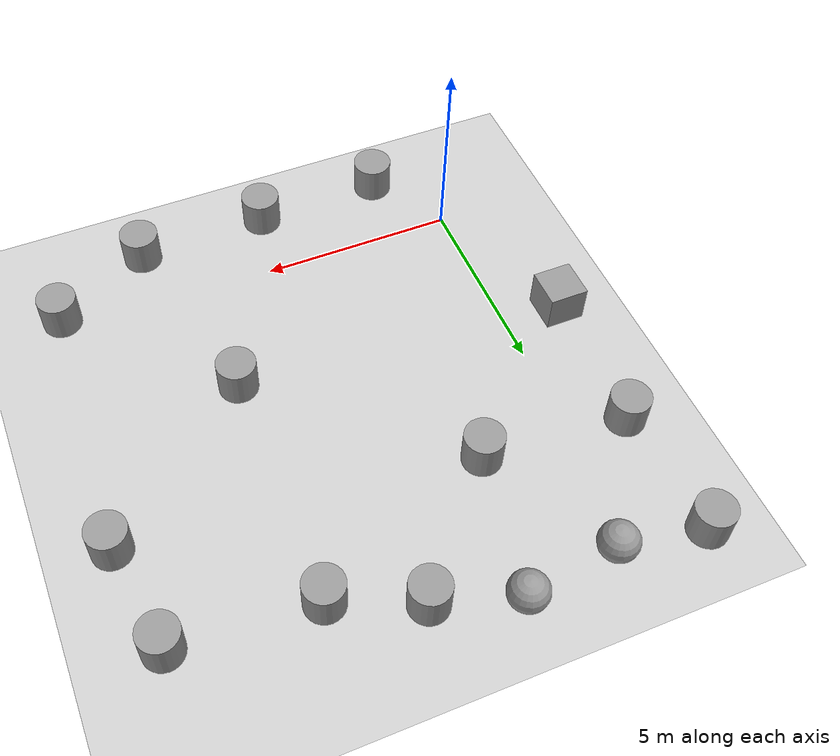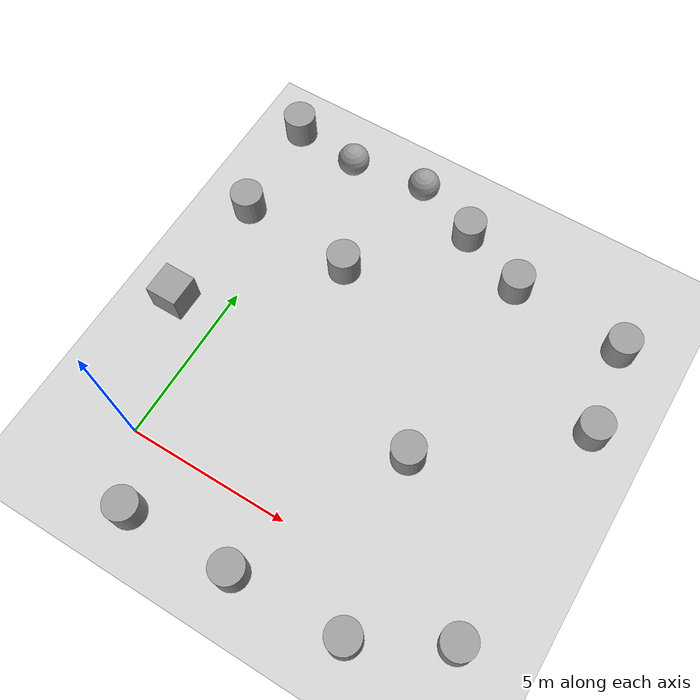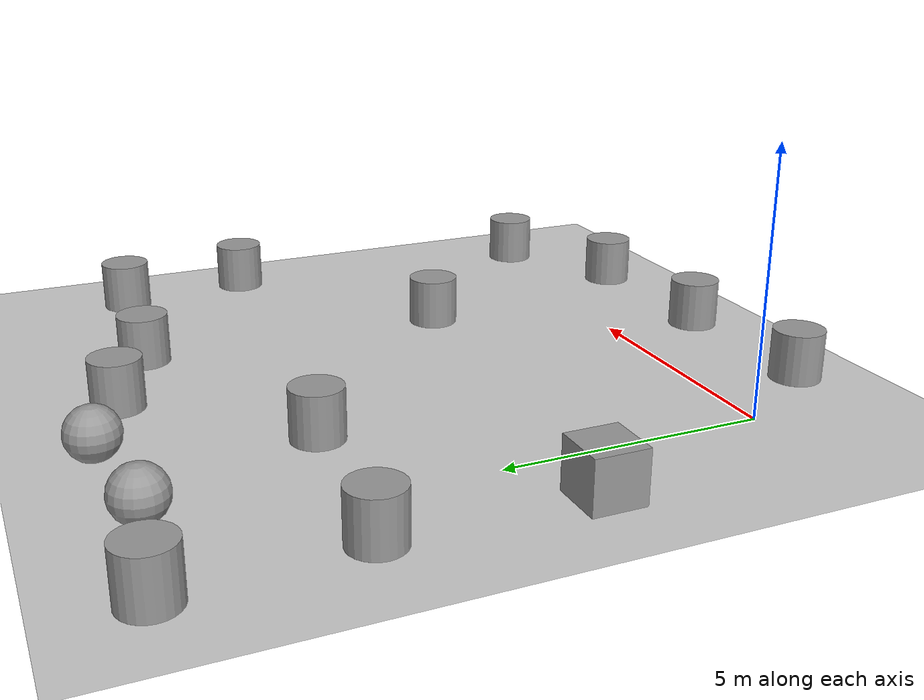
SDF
<sdf version="1.6">
 <world name="default">
  <light name="sun" type="directional">
   <pose>0 0 10 0 -0 0</pose>
   <diffuse>0.8 0.8 0.8 1</diffuse>
   <specular>0.1 0.1 0.1 1</specular>
   <attenuation>
    <range>1000</range>
    <constant>0.9</constant>
    <linear>0.01</linear>
    <quadratic>0.001</quadratic>
   </attenuation>
   <direction>-0.5 0.5 -1</direction>
  </light>
  <model name="ground_plane">
   <static>1</static>
   <link name="link">
    <collision name="collision">
     <geometry><plane><normal>0 0 1</normal><size>100 100</size></plane></geometry>
     <surface><friction><ode><mu>100</mu><mu2>50</mu2></ode></friction></surface>
    </collision>
    <visual name="visual">
     <cast_shadows>0</cast_shadows>
     <geometry><plane><normal>0 0 1</normal><size>100 100</size></plane></geometry>
     <material>
      <script><uri>file://media/materials/scripts/gazebo.material</uri><name>Gazebo/Grey</name></script>
     </material>
    </visual>
   </link>
  </model>
  <gravity>0 0 -9.8</gravity>
  <magnetic_field>6e-06 2.3e-05 -4.2e-05</magnetic_field>
  <atmosphere type="adiabatic"/>
  <physics name="default_physics" default="0" type="ode">
   <max_step_size>0.001</max_step_size>
   <real_time_factor>1</real_time_factor>
   <real_time_update_rate>1000</real_time_update_rate>
  </physics>
  <scene><ambient>0.4 0.4 0.4 1</ambient><background>0.7 0.7 0.7 1</background><shadows>1</shadows></scene>
  <spherical_coordinates>
   <surface_model>EARTH_WGS84</surface_model>
   <latitude_deg>0</latitude_deg>
   <longitude_deg>0</longitude_deg>
   <elevation>0</elevation>
   <heading_deg>0</heading_deg>
  </spherical_coordinates>
  <model name="unit_box_0">
   <pose>-1.47151 3.96905 0.499995 0 1e-05 0</pose>
   <link name="link">
    <inertial>
     <mass>1</mass>
     <inertia>
      <ixx>0.166667</ixx>
      <ixy>0</ixy>
      <ixz>0</ixz>
      <iyy>0.166667</iyy>
      <iyz>0</iyz>
      <izz>0.166667</izz>
     </inertia>
    </inertial>
    <collision name="collision"><geometry><box><size>1 1 1</size></box></geometry></collision>
    <visual name="visual">
     <geometry><box><size>1 1 1</size></box></geometry>
     <material>
      <script><name>Gazebo/Grey</name><uri>file://media/materials/scripts/gazebo.material</uri></script>
     </material>
    </visual>
   </link>
  </model>
  <model name="unit_cylinder_0">
   <pose>-1.37716 7.70584 0.499998 3e-06 -3e-06 0</pose>
   <link name="link">
    <inertial>
     <mass>1</mass>
     <inertia><ixx>0.145833</ixx><ixy>0</ixy><ixz>0</ixz><iyy>0.145833</iyy><iyz>0</iyz><izz>0.125</izz></inertia>
    </inertial>
    <collision name="collision">
     <geometry><cylinder><radius>0.5</radius><length>1</length></cylinder></geometry>
    </collision>
    <visual name="visual">
     <geometry><cylinder><radius>0.5</radius><length>1</length></cylinder></geometry>
     <material>
      <script><name>Gazebo/Grey</name><uri>file://media/materials/scripts/gazebo.material</uri></script>
     </material>
    </visual>
   </link>
  </model>
  <model name="unit_sphere_0">
   <pose>0.591738 10.733 0.5 0 -0 0</pose>
   <link name="link">
    <inertial>
     <mass>1</mass>
     <inertia><ixx>0.1</ixx><ixy>0</ixy><ixz>0</ixz><iyy>0.1</iyy><iyz>0</iyz><izz>0.1</izz></inertia>
    </inertial>
    <collision name="collision"><geometry><sphere><radius>0.5</radius></sphere></geometry></collision>
    <visual name="visual">
     <geometry><sphere><radius>0.5</radius></sphere></geometry>
     <material>
      <script><name>Gazebo/Grey</name><uri>file://media/materials/scripts/gazebo.material</uri></script>
     </material>
    </visual>
   </link>
  </model>
  <model name="unit_cylinder_1">
   <pose>-1.61204 11.0291 0.499998 3e-06 -3e-06 0</pose>
   <link name="link">
    <inertial>
     <mass>1</mass>
     <inertia><ixx>0.145833</ixx><ixy>0</ixy><ixz>0</ixz><iyy>0.145833</iyy><iyz>0</iyz><izz>0.125</izz></inertia>
    </inertial>
    <collision name="collision">
     <geometry><cylinder><radius>0.5</radius><length>1</length></cylinder></geometry>
    </collision>
    <visual name="visual">
     <geometry><cylinder><radius>0.5</radius><length>1</length></cylinder></geometry>
     <material>
      <script><name>Gazebo/Grey</name><uri>file://media/materials/scripts/gazebo.material</uri></script>
     </material>
    </visual>
   </link>
  </model>
  <model name="unit_sphere_1">
   <pose>2.98051 11.0508 0.5 0 -0 0</pose>
   <link name="link">
    <inertial>
     <mass>1</mass>
     <inertia><ixx>0.1</ixx><ixy>0</ixy><ixz>0</ixz><iyy>0.1</iyy><iyz>0</iyz><izz>0.1</izz></inertia>
    </inertial>
    <collision name="collision"><geometry><sphere><radius>0.5</radius></sphere></geometry></collision>
    <visual name="visual">
     <geometry><sphere><radius>0.5</radius></sphere></geometry>
     <material>
      <script><name>Gazebo/Grey</name><uri>file://media/materials/scripts/gazebo.material</uri></script>
     </material>
    </visual>
   </link>
  </model>
  <model name="unit_cylinder_2">
   <pose>4.98263 10.3314 0.499998 3e-06 -3e-06 0</pose>
   <link name="link">
    <inertial>
     <mass>1</mass>
     <inertia><ixx>0.145833</ixx><ixy>0</ixy><ixz>0</ixz><iyy>0.145833</iyy><iyz>0</iyz><izz>0.125</izz></inertia>
    </inertial>
    <collision name="collision">
     <geometry><cylinder><radius>0.5</radius><length>1</length></cylinder></geometry>
    </collision>
    <visual name="visual">
     <geometry><cylinder><radius>0.5</radius><length>1</length></cylinder></geometry>
     <material>
      <script><name>Gazebo/Grey</name><uri>file://media/materials/scripts/gazebo.material</uri></script>
     </material>
    </visual>
   </link>
  </model>
  <model name="unit_cylinder_3">
   <pose>7.06512 9.45848 0.499992 -3e-06 3e-06 0</pose>
   <link name="link">
    <inertial>
     <mass>1</mass>
     <inertia><ixx>0.145833</ixx><ixy>0</ixy><ixz>0</ixz><iyy>0.145833</iyy><iyz>0</iyz><izz>0.125</izz></inertia>
    </inertial>
    <collision name="collision">
     <geometry><cylinder><radius>0.5</radius><length>1</length></cylinder></geometry>
    </collision>
    <visual name="visual">
     <geometry><cylinder><radius>0.5</radius><length>1</length></cylinder></geometry>
     <material>
      <script><name>Gazebo/Grey</name><uri>file://media/materials/scripts/gazebo.material</uri></script>
     </material>
    </visual>
   </link>
  </model>
  <model name="unit_cylinder_4">
   <pose>10.6105 9.17734 0.499998 3e-06 -4e-06 0</pose>
   <link name="link">
    <inertial>
     <mass>1</mass>
     <inertia><ixx>0.145833</ixx><ixy>0</ixy><ixz>0</ixz><iyy>0.145833</iyy><iyz>0</iyz><izz>0.125</izz></inertia>
    </inertial>
    <collision name="collision">
     <geometry><cylinder><radius>0.5</radius><length>1</length></cylinder></geometry>
    </collision>
    <visual name="visual">
     <geometry><cylinder><radius>0.5</radius><length>1</length></cylinder></geometry>
     <material>
      <script><name>Gazebo/Grey</name><uri>file://media/materials/scripts/gazebo.material</uri></script>
     </material>
    </visual>
   </link>
  </model>
  <model name="unit_cylinder_5">
   <pose>11.0133 6.48297 0.499992 -3e-06 4e-06 0</pose>
   <link name="link">
    <inertial>
     <mass>1</mass>
     <inertia><ixx>0.145833</ixx><ixy>0</ixy><ixz>0</ixz><iyy>0.145833</iyy><iyz>0</iyz><izz>0.125</izz></inertia>
    </inertial>
    <collision name="collision">
     <geometry><cylinder><radius>0.5</radius><length>1</length></cylinder></geometry>
    </collision>
    <visual name="visual">
     <geometry><cylinder><radius>0.5</radius><length>1</length></cylinder></geometry>
     <material>
      <script><name>Gazebo/Grey</name><uri>file://media/materials/scripts/gazebo.material</uri></script>
     </material>
    </visual>
   </link>
  </model>
  <model name="unit_cylinder_6">
   <pose>6.96929 3.25891 0.499998 3e-06 -4e-06 0</pose>
   <link name="link">
    <inertial>
     <mass>1</mass>
     <inertia><ixx>0.145833</ixx><ixy>0</ixy><ixz>0</ixz><iyy>0.145833</iyy><iyz>0</iyz><izz>0.125</izz></inertia>
    </inertial>
    <collision name="collision">
     <geometry><cylinder><radius>0.5</radius><length>1</length></cylinder></geometry>
    </collision>
    <visual name="visual">
     <geometry><cylinder><radius>0.5</radius><length>1</length></cylinder></geometry>
     <material>
      <script><name>Gazebo/Grey</name><uri>file://media/materials/scripts/gazebo.material</uri></script>
     </material>
    </visual>
   </link>
  </model>
  <model name="unit_cylinder_7">
   <pose>1.29067 -1.90805 0.499992 -3e-06 -4e-06 -0</pose>
   <link name="link">
    <inertial>
     <mass>1</mass>
     <inertia><ixx>0.145833</ixx><ixy>0</ixy><ixz>0</ixz><iyy>0.145833</iyy><iyz>0</iyz><izz>0.125</izz></inertia>
    </inertial>
    <collision name="collision">
     <geometry><cylinder><radius>0.5</radius><length>1</length></cylinder></geometry>
    </collision>
    <visual name="visual">
     <geometry><cylinder><radius>0.5</radius><length>1</length></cylinder></geometry>
     <material>
      <script><name>Gazebo/Grey</name><uri>file://media/materials/scripts/gazebo.material</uri></script>
     </material>
    </visual>
   </link>
  </model>
  <model name="unit_cylinder_8">
   <pose>4.6046 -1.82447 0.499993 -3e-06 -3e-06 0</pose>
   <link name="link">
    <inertial>
     <mass>1</mass>
     <inertia><ixx>0.145833</ixx><ixy>0</ixy><ixz>0</ixz><iyy>0.145833</iyy><iyz>0</iyz><izz>0.125</izz></inertia>
    </inertial>
    <collision name="collision">
     <geometry><cylinder><radius>0.5</radius><length>1</length></cylinder></geometry>
    </collision>
    <visual name="visual">
     <geometry><cylinder><radius>0.5</radius><length>1</length></cylinder></geometry>
     <material>
      <script><name>Gazebo/Grey</name><uri>file://media/materials/scripts/gazebo.material</uri></script>
     </material>
    </visual>
   </link>
  </model>
  <model name="unit_cylinder_9">
   <pose>8.01795 -1.71886 0.499997 3e-06 4e-06 -0</pose>
   <link name="link">
    <inertial>
     <mass>1</mass>
     <inertia><ixx>0.145833</ixx><ixy>0</ixy><ixz>0</ixz><iyy>0.145833</iyy><iyz>0</iyz><izz>0.125</izz></inertia>
    </inertial>
    <collision name="collision">
     <geometry><cylinder><radius>0.5</radius><length>1</length></cylinder></geometry>
    </collision>
    <visual name="visual">
     <geometry><cylinder><radius>0.5</radius><length>1</length></cylinder></geometry>
     <material>
      <script><name>Gazebo/Grey</name><uri>file://media/materials/scripts/gazebo.material</uri></script>
     </material>
    </visual>
   </link>
  </model>
  <model name="unit_cylinder_10">
   <pose>10.5277 -0.37599 0.499993 -3e-06 -4e-06 -0</pose>
   <link name="link">
    <inertial>
     <mass>1</mass>
     <inertia><ixx>0.145833</ixx><ixy>0</ixy><ixz>0</ixz><iyy>0.145833</iyy><iyz>0</iyz><izz>0.125</izz></inertia>
    </inertial>
    <collision name="collision">
     <geometry><cylinder><radius>0.5</radius><length>1</length></cylinder></geometry>
    </collision>
    <visual name="visual">
     <geometry><cylinder><radius>0.5</radius><length>1</length></cylinder></geometry>
     <material>
      <script><name>Gazebo/Grey</name><uri>file://media/materials/scripts/gazebo.material</uri></script>
     </material>
    </visual>
   </link>
  </model>
  <model name="unit_cylinder_11">
   <pose>2.30659 7.3997 0.499997 3e-06 4e-06 -0</pose>
   <link name="link">
    <inertial>
     <mass>1</mass>
     <inertia><ixx>0.145833</ixx><ixy>0</ixy><ixz>0</ixz><iyy>0.145833</iyy><iyz>0</iyz><izz>0.125</izz></inertia>
    </inertial>
    <collision name="collision">
     <geometry><cylinder><radius>0.5</radius><length>1</length></cylinder></geometry>
    </collision>
    <visual name="visual">
     <geometry><cylinder><radius>0.5</radius><length>1</length></cylinder></geometry>
     <material>
      <script><name>Gazebo/Grey</name><uri>file://media/materials/scripts/gazebo.material</uri></script>
     </material>
    </visual>
   </link>
  </model>
 </world>
</sdf>
